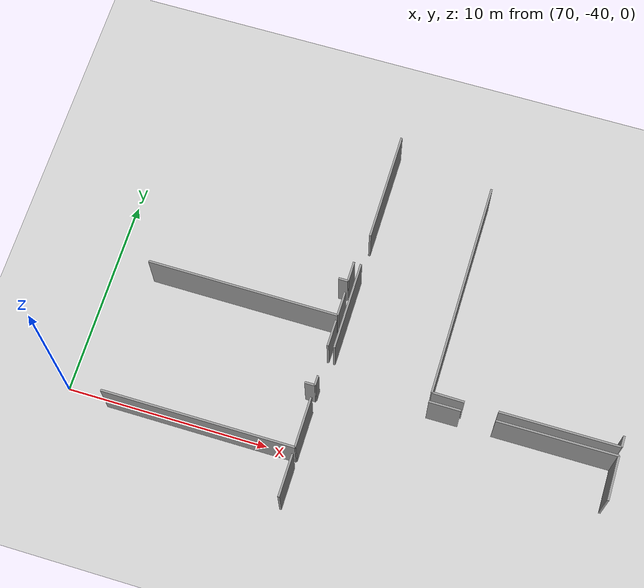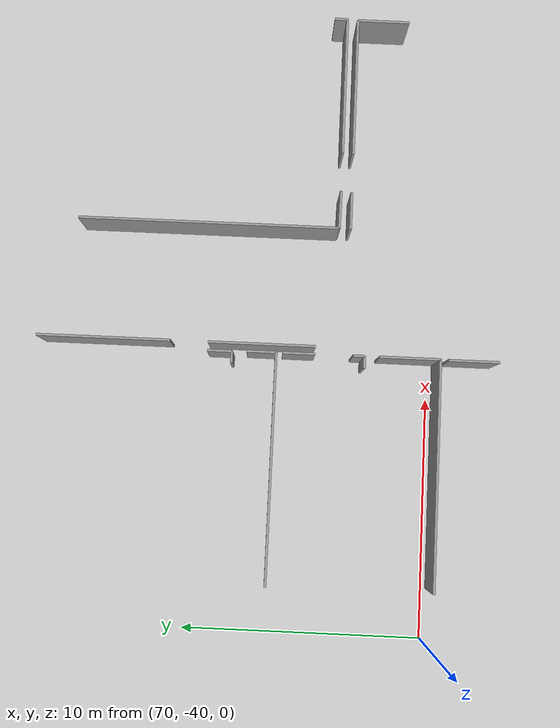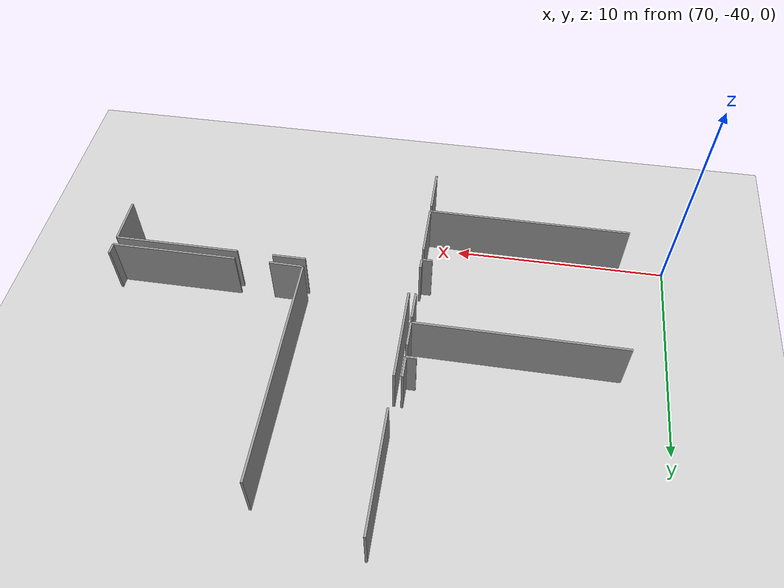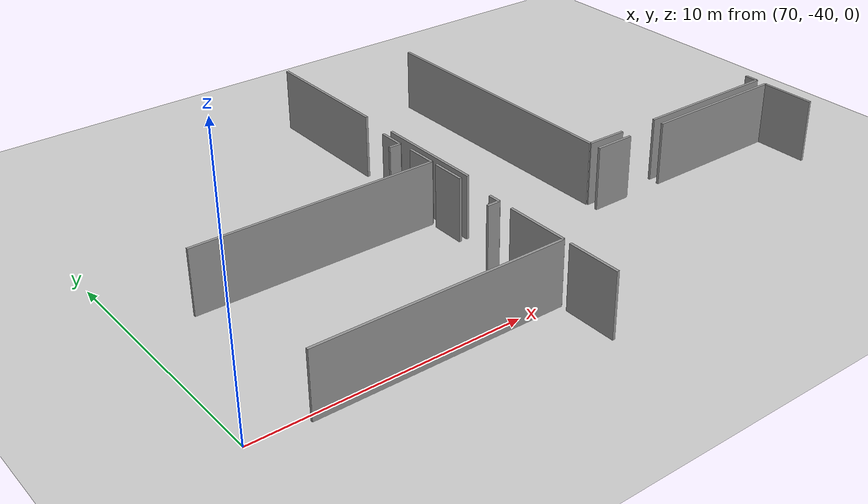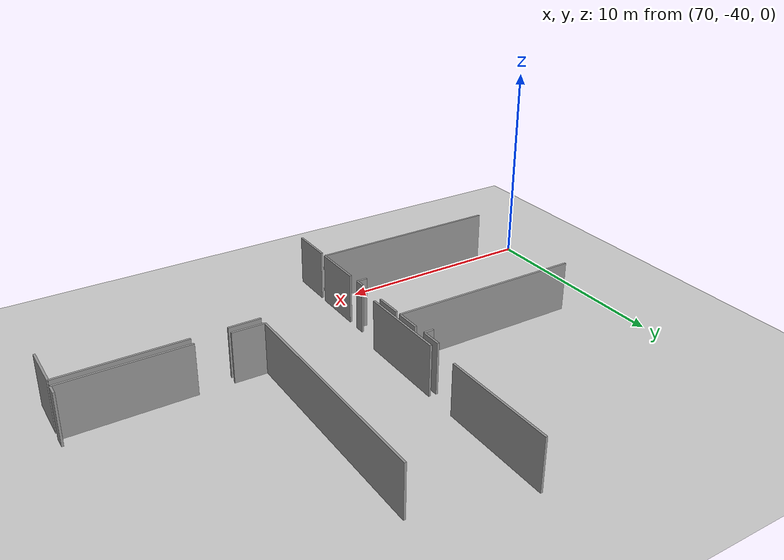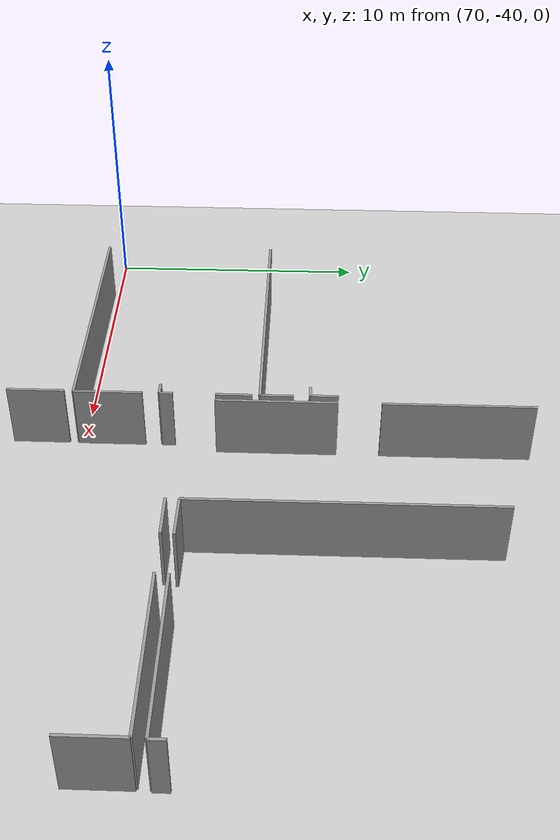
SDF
<sdf version="1.6">
 <world name="default">
  <model name="ground_plane">
   <static>1</static>
   <link name="link">
    <collision name="collision">
     <geometry><plane><normal>0 0 1</normal><size>100 100</size></plane></geometry>
     <surface><friction><ode><mu>100</mu><mu2>50</mu2></ode></friction></surface>
    </collision>
    <visual name="visual">
     <cast_shadows>0</cast_shadows>
     <geometry><plane><normal>0 0 1</normal><size>100 100</size></plane></geometry>
     <material>
      <script><uri>file://media/materials/scripts/gazebo.material</uri><name>Gazebo/Grey</name></script>
     </material>
    </visual>
   </link>
  </model>
  <model name="0510035740_A_40_1_103">
   <static>1</static>
   <link name="Wall_512">
    <collision name="Wall_512_Collision">
     <geometry><box><size>4.43316434332 0.1 2.5</size></box></geometry>
     <pose>2.21658217166 0 1.25 0 0 0</pose>
    </collision>
    <visual name="Wall_512_Visual">
     <pose>2.21658217166 0 1.25 0 0 0</pose>
     <geometry><box><size>4.43316434332 0.1 2.5</size></box></geometry>
     <material>
      <script><uri>file://media/materials/scripts/gazebo.material</uri><name>Gazebo/Grey</name></script>
      <ambient>1 1 1 1</ambient>
     </material>
    </visual>
    <pose>175.821272438 -84.7631073013 0 0 0 1.57079632679</pose>
   </link>
   <link name="Wall_513">
    <collision name="Wall_513_Collision">
     <geometry><box><size>5.52705215002 0.1 2.5</size></box></geometry>
     <pose>2.76352607501 0 1.25 0 0 0</pose>
    </collision>
    <visual name="Wall_513_Visual">
     <pose>2.76352607501 0 1.25 0 0 0</pose>
     <geometry><box><size>5.52705215002 0.1 2.5</size></box></geometry>
     <material>
      <script><uri>file://media/materials/scripts/gazebo.material</uri><name>Gazebo/Grey</name></script>
      <ambient>1 1 1 1</ambient>
     </material>
    </visual>
    <pose>175.821272438 -78.765759535 0 0 0 1.57079632679</pose>
   </link>
   <link name="Wall_573">
    <collision name="Wall_573_Collision">
     <geometry><box><size>1.01800092638 0.1 2.5</size></box></geometry>
     <pose>0.509000463189 0 1.25 0 0 0</pose>
    </collision>
    <visual name="Wall_573_Visual">
     <pose>0.509000463189 0 1.25 0 0 0</pose>
     <geometry><box><size>1.01800092638 0.1 2.5</size></box></geometry>
     <material>
      <script><uri>file://media/materials/scripts/gazebo.material</uri><name>Gazebo/Grey</name></script>
      <ambient>1 1 1 1</ambient>
     </material>
    </visual>
    <pose>175.470010089 -80.3147148214 0 0 0 -1.57079632679</pose>
   </link>
   <link name="Wall_574">
    <collision name="Wall_574_Collision">
     <geometry><box><size>0.467249988896 0.1 2.5</size></box></geometry>
     <pose>0.233624994448 0 1.25 0 0 0</pose>
    </collision>
    <visual name="Wall_574_Visual">
     <pose>0.233624994448 0 1.25 0 0 0</pose>
     <geometry><box><size>0.467249988896 0.1 2.5</size></box></geometry>
     <material>
      <script><uri>file://media/materials/scripts/gazebo.material</uri><name>Gazebo/Grey</name></script>
      <ambient>1 1 1 1</ambient>
     </material>
    </visual>
    <pose>175.470010089 -81.3327157478 0 0 0 3.14159265359</pose>
   </link>
   <link name="Wall_577">
    <collision name="Wall_577_Collision">
     <geometry><box><size>1.21825092162 0.1 2.5</size></box></geometry>
     <pose>0.60912546081 0 1.25 0 0 0</pose>
    </collision>
    <visual name="Wall_577_Visual">
     <pose>0.60912546081 0 1.25 0 0 0</pose>
     <geometry><box><size>1.21825092162 0.1 2.5</size></box></geometry>
     <material>
      <script><uri>file://media/materials/scripts/gazebo.material</uri><name>Gazebo/Grey</name></script>
      <ambient>1 1 1 1</ambient>
     </material>
    </visual>
    <pose>175.503258187 -81.9334657335 0 0 0 -1.57079632679</pose>
   </link>
   <link name="Wall_578">
    <collision name="Wall_578_Collision">
     <geometry><box><size>9.49485059733 0.1 2.5</size></box></geometry>
     <pose>4.74742529866 0 1.25 0 0 0</pose>
    </collision>
    <visual name="Wall_578_Visual">
     <pose>4.74742529866 0 1.25 0 0 0</pose>
     <geometry><box><size>9.49485059733 0.1 2.5</size></box></geometry>
     <material>
      <script><uri>file://media/materials/scripts/gazebo.material</uri><name>Gazebo/Grey</name></script>
      <ambient>1 1 1 1</ambient>
     </material>
    </visual>
    <pose>175.503258187 -83.1517166551 0 0 0 3.13683460342</pose>
   </link>
   <link name="Wall_582">
    <collision name="Wall_582_Collision">
     <geometry><box><size>1.33499996827 0.1 2.5</size></box></geometry>
     <pose>0.667499984137 0 1.25 0 0 0</pose>
    </collision>
    <visual name="Wall_582_Visual">
     <pose>0.667499984137 0 1.25 0 0 0</pose>
     <geometry><box><size>1.33499996827 0.1 2.5</size></box></geometry>
     <material>
      <script><uri>file://media/materials/scripts/gazebo.material</uri><name>Gazebo/Grey</name></script>
      <ambient>1 1 1 1</ambient>
     </material>
    </visual>
    <pose>175.503258187 -83.4187166488 0 0 0 -1.57079632679</pose>
   </link>
   <link name="Wall_583">
    <collision name="Wall_583_Collision">
     <geometry><box><size>0.48552375272 0.1 2.5</size></box></geometry>
     <pose>0.24276187636 0 1.25 0 0 0</pose>
    </collision>
    <visual name="Wall_583_Visual">
     <pose>0.24276187636 0 1.25 0 0 0</pose>
     <geometry><box><size>0.48552375272 0.1 2.5</size></box></geometry>
     <material>
      <script><uri>file://media/materials/scripts/gazebo.material</uri><name>Gazebo/Grey</name></script>
      <ambient>1 1 1 1</ambient>
     </material>
    </visual>
    <pose>175.503258187 -86.305971333 0 0 0 -1.57079632679</pose>
   </link>
   <link name="Wall_584">
    <collision name="Wall_584_Collision">
     <geometry><box><size>0.500498086965 0.1 2.5</size></box></geometry>
     <pose>0.250249043483 0 1.25 0 0 0</pose>
    </collision>
    <visual name="Wall_584_Visual">
     <pose>0.250249043483 0 1.25 0 0 0</pose>
     <geometry><box><size>0.500498086965 0.1 2.5</size></box></geometry>
     <material>
      <script><uri>file://media/materials/scripts/gazebo.material</uri><name>Gazebo/Grey</name></script>
      <ambient>1 1 1 1</ambient>
     </material>
    </visual>
    <pose>175.503258187 -86.7914950858 0 0 0 3.14159265359</pose>
   </link>
   <link name="Wall_587">
    <collision name="Wall_587_Collision">
     <geometry><box><size>2.50934309626 0.1 2.5</size></box></geometry>
     <pose>1.25467154813 0 1.25 0 0 0</pose>
    </collision>
    <visual name="Wall_587_Visual">
     <pose>1.25467154813 0 1.25 0 0 0</pose>
     <geometry><box><size>2.50934309626 0.1 2.5</size></box></geometry>
     <material>
      <script><uri>file://media/materials/scripts/gazebo.material</uri><name>Gazebo/Grey</name></script>
      <ambient>1 1 1 1</ambient>
     </material>
    </visual>
    <pose>175.503258187 -87.4072194057 0 0 0 -1.57079632679</pose>
   </link>
   <link name="Wall_588">
    <collision name="Wall_588_Collision">
     <geometry><box><size>9.47878109993 0.1 2.5</size></box></geometry>
     <pose>4.73939054996 0 1.25 0 0 0</pose>
    </collision>
    <visual name="Wall_588_Visual">
     <pose>4.73939054996 0 1.25 0 0 0</pose>
     <geometry><box><size>9.47878109993 0.1 2.5</size></box></geometry>
     <material>
      <script><uri>file://media/materials/scripts/gazebo.material</uri><name>Gazebo/Grey</name></script>
      <ambient>1 1 1 1</ambient>
     </material>
    </visual>
    <pose>175.503258187 -89.916562502 0 0 0 3.13918282614</pose>
   </link>
   <link name="Wall_592">
    <collision name="Wall_592_Collision">
     <geometry><box><size>2.10681268758 0.1 2.5</size></box></geometry>
     <pose>1.05340634379 0 1.25 0 0 0</pose>
    </collision>
    <visual name="Wall_592_Visual">
     <pose>1.05340634379 0 1.25 0 0 0</pose>
     <geometry><box><size>2.10681268758 0.1 2.5</size></box></geometry>
     <material>
      <script><uri>file://media/materials/scripts/gazebo.material</uri><name>Gazebo/Grey</name></script>
      <ambient>1 1 1 1</ambient>
     </material>
    </visual>
    <pose>175.487268643 -90.2429522281 0 0 0 -1.57079632679</pose>
   </link>
   <link name="Wall_606">
    <collision name="Wall_606_Collision">
     <geometry><box><size>1.55834597057 0.1 2.5</size></box></geometry>
     <pose>0.779172985286 0 1.25 0 0 0</pose>
    </collision>
    <visual name="Wall_606_Visual">
     <pose>0.779172985286 0 1.25 0 0 0</pose>
     <geometry><box><size>1.55834597057 0.1 2.5</size></box></geometry>
     <material>
      <script><uri>file://media/materials/scripts/gazebo.material</uri><name>Gazebo/Grey</name></script>
      <ambient>1 1 1 1</ambient>
     </material>
    </visual>
    <pose>180.784883536 -86.0257736211 0 0 0 0.0</pose>
   </link>
   <link name="Wall_607">
    <collision name="Wall_607_Collision">
     <geometry><box><size>5.82400081217 0.1 2.5</size></box></geometry>
     <pose>2.91200040608 0 1.25 0 0 0</pose>
    </collision>
    <visual name="Wall_607_Visual">
     <pose>2.91200040608 0 1.25 0 0 0</pose>
     <geometry><box><size>5.82400081217 0.1 2.5</size></box></geometry>
     <material>
      <script><uri>file://media/materials/scripts/gazebo.material</uri><name>Gazebo/Grey</name></script>
      <ambient>1 1 1 1</ambient>
     </material>
    </visual>
    <pose>183.997512738 -86.0257736211 0 0 0 0.0</pose>
   </link>
   <link name="Wall_608">
    <collision name="Wall_608_Collision">
     <geometry><box><size>2.18244576563 0.1 2.5</size></box></geometry>
     <pose>1.09122288281 0 1.25 0 0 0</pose>
    </collision>
    <visual name="Wall_608_Visual">
     <pose>1.09122288281 0 1.25 0 0 0</pose>
     <geometry><box><size>2.18244576563 0.1 2.5</size></box></geometry>
     <material>
      <script><uri>file://media/materials/scripts/gazebo.material</uri><name>Gazebo/Grey</name></script>
      <ambient>1 1 1 1</ambient>
     </material>
    </visual>
    <pose>189.82151355 -86.0257736211 0 0 0 -1.57079632679</pose>
   </link>
   <link name="Wall_611">
    <collision name="Wall_611_Collision">
     <geometry><box><size>10.8805035437 0.1 2.5</size></box></geometry>
     <pose>5.44025177186 0 1.25 0 0 0</pose>
    </collision>
    <visual name="Wall_611_Visual">
     <pose>5.44025177186 0 1.25 0 0 0</pose>
     <geometry><box><size>10.8805035437 0.1 2.5</size></box></geometry>
     <material>
      <script><uri>file://media/materials/scripts/gazebo.material</uri><name>Gazebo/Grey</name></script>
      <ambient>1 1 1 1</ambient>
     </material>
    </visual>
    <pose>180.810009962 -85.554716598 0 0 0 1.57079632679</pose>
   </link>
   <link name="Wall_617">
    <collision name="Wall_617_Collision">
     <geometry><box><size>0.542629264671 0.1 2.5</size></box></geometry>
     <pose>0.271314632336 0 1.25 0 0 0</pose>
    </collision>
    <visual name="Wall_617_Visual">
     <pose>0.271314632336 0 1.25 0 0 0</pose>
     <geometry><box><size>0.542629264671 0.1 2.5</size></box></geometry>
     <material>
      <script><uri>file://media/materials/scripts/gazebo.material</uri><name>Gazebo/Grey</name></script>
      <ambient>1 1 1 1</ambient>
     </material>
    </visual>
    <pose>189.849939405 -85.0369599563 0 0 0 -1.57079632679</pose>
   </link>
   <link name="Wall_618">
    <collision name="Wall_618_Collision">
     <geometry><box><size>5.83466050773 0.1 2.5</size></box></geometry>
     <pose>2.91733025387 0 1.25 0 0 0</pose>
    </collision>
    <visual name="Wall_618_Visual">
     <pose>2.91733025387 0 1.25 0 0 0</pose>
     <geometry><box><size>5.83466050773 0.1 2.5</size></box></geometry>
     <material>
      <script><uri>file://media/materials/scripts/gazebo.material</uri><name>Gazebo/Grey</name></script>
      <ambient>1 1 1 1</ambient>
     </material>
    </visual>
    <pose>189.849939405 -85.579589221 0 0 0 3.14159265359</pose>
   </link>
   <link name="Wall_619">
    <collision name="Wall_619_Collision">
     <geometry><box><size>1.57757722856 0.1 2.5</size></box></geometry>
     <pose>0.788788614278 0 1.25 0 0 0</pose>
    </collision>
    <visual name="Wall_619_Visual">
     <pose>0.788788614278 0 1.25 0 0 0</pose>
     <geometry><box><size>1.57757722856 0.1 2.5</size></box></geometry>
     <material>
      <script><uri>file://media/materials/scripts/gazebo.material</uri><name>Gazebo/Grey</name></script>
      <ambient>1 1 1 1</ambient>
     </material>
    </visual>
    <pose>182.387391103 -85.579589221 0 0 0 3.12582565777</pose>
   </link>
   <pose>-93.95 49.6557238758 0 0 0 0</pose>
  </model>
 </world>
</sdf>
